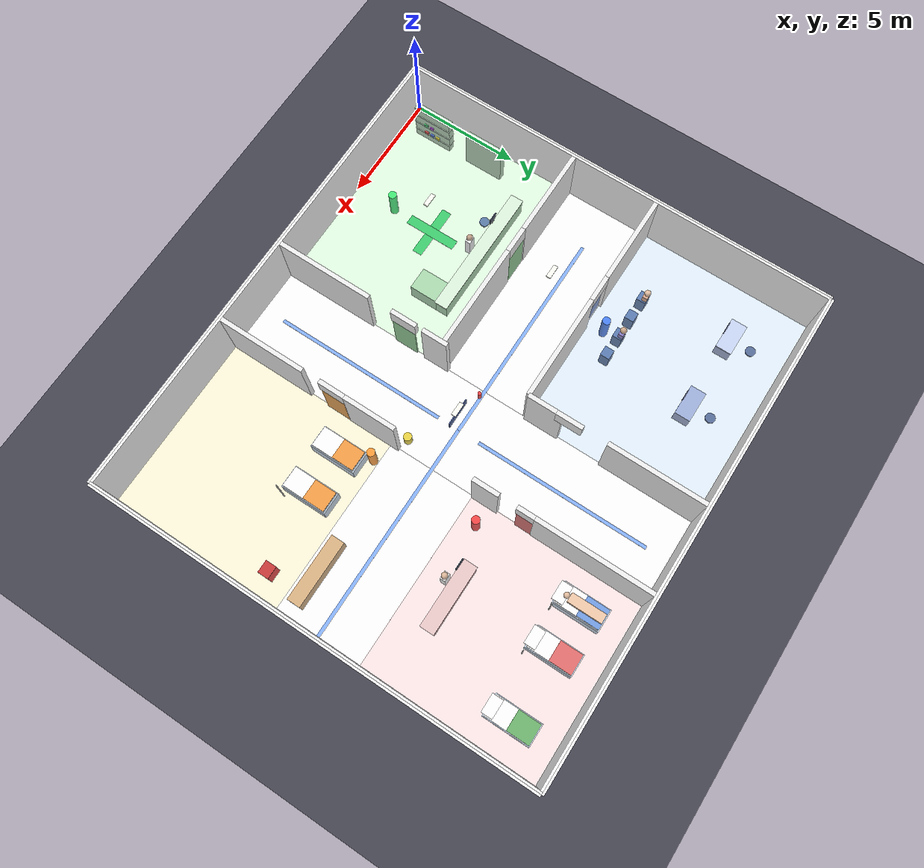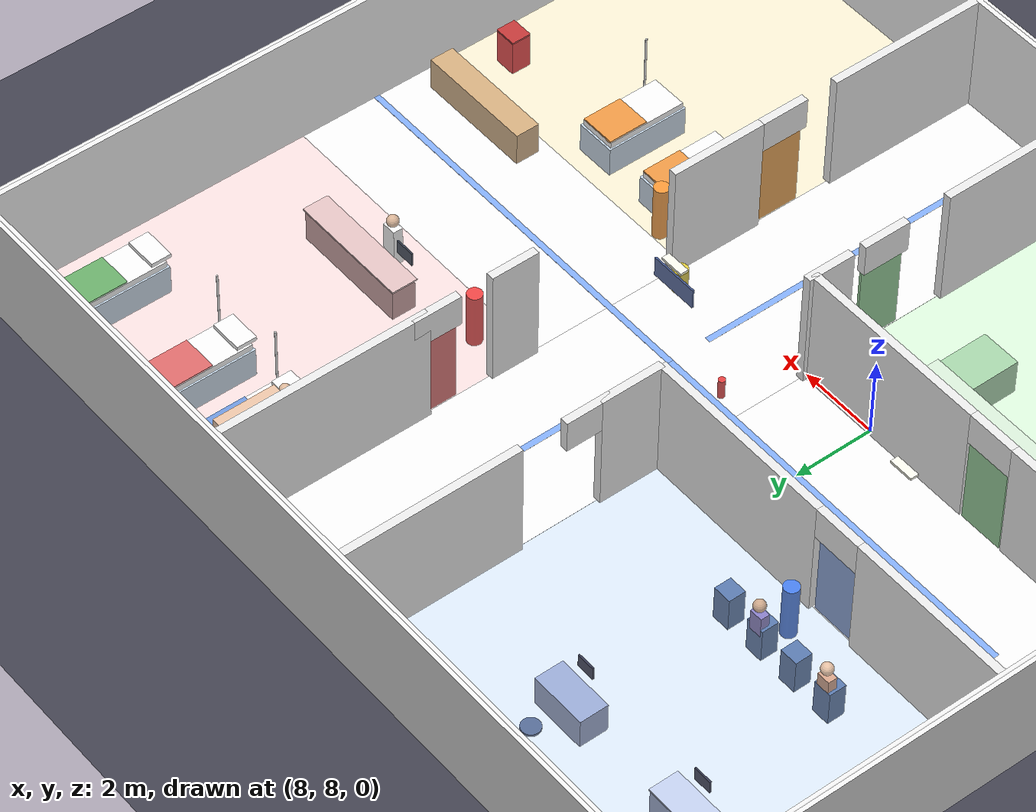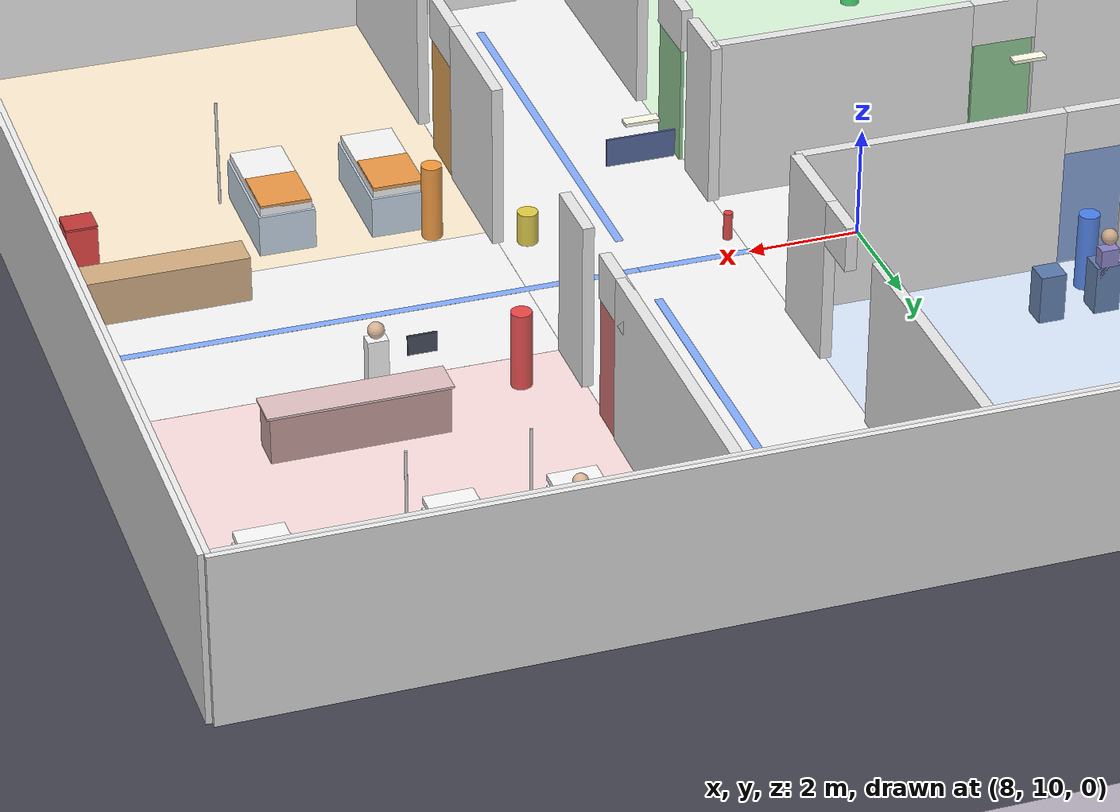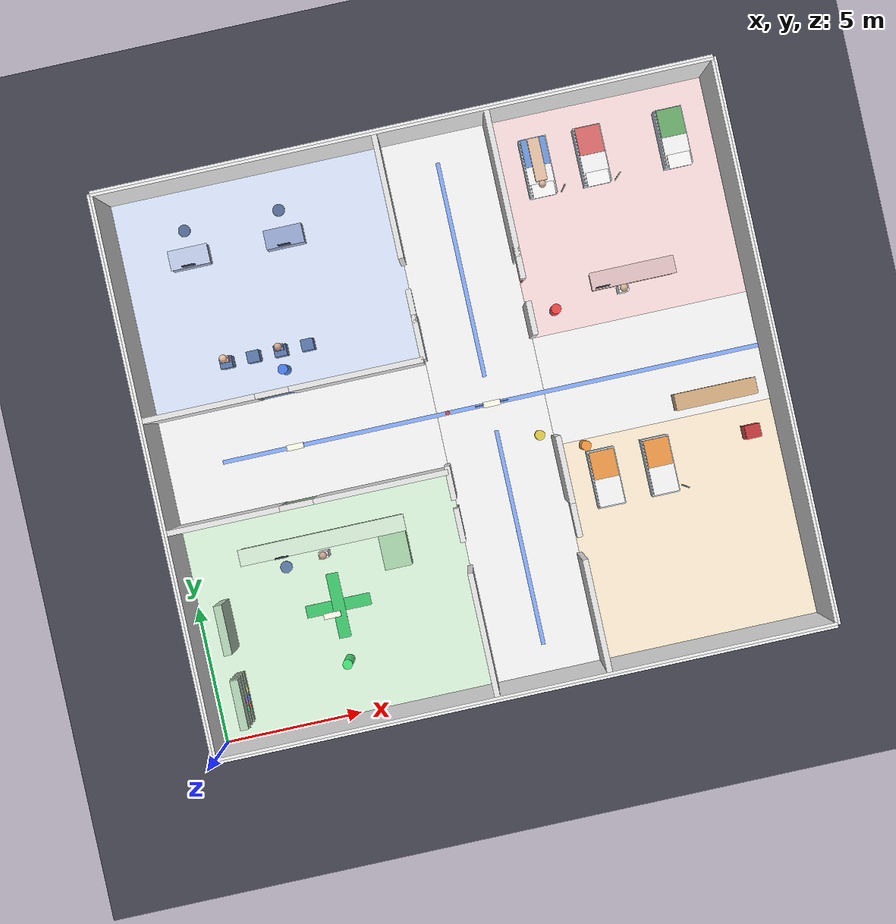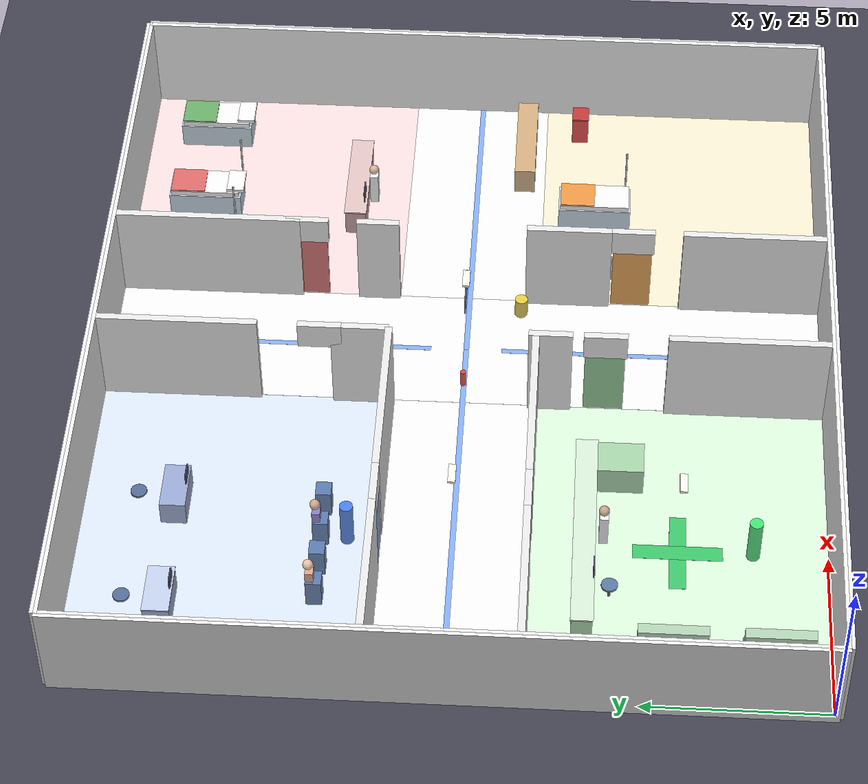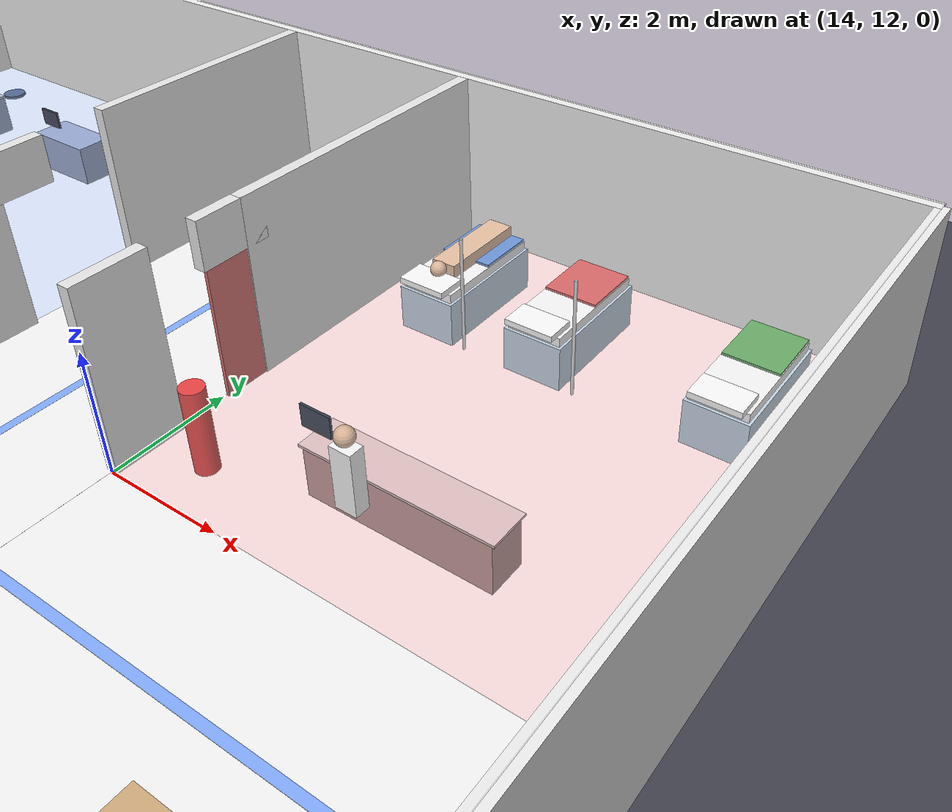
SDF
<?xml version="1.0" ?>
<sdf version="1.9">
<world name="hospital_full">

<gui fullscreen="0">
    <camera name="user_camera">
        <pose>0 -12 6 0 0.5 1.57</pose>
    </camera>
</gui>

  <!-- ═══ PHYSICS ═══ -->
  <physics name="fast_physics" type="ode">
    <max_step_size>0.002</max_step_size>
    <real_time_factor>1.0</real_time_factor>
    <real_time_update_rate>500</real_time_update_rate>
    <ode>
      <solver><type>quick</type><iters>50</iters></solver>
    </ode>
  </physics>

  <plugin filename="gz-sim-physics-system"           name="gz::sim::systems::Physics"/>
  <plugin filename="gz-sim-user-commands-system"     name="gz::sim::systems::UserCommands"/>
  <plugin filename="gz-sim-scene-broadcaster-system" name="gz::sim::systems::SceneBroadcaster"/>
  <plugin filename="gz-sim-sensors-system"           name="gz::sim::systems::Sensors">
    <render_engine>ogre2</render_engine>
  </plugin>
  <plugin filename="gz-sim-contact-system"           name="gz::sim::systems::Contact"/>

  <!-- ═══ LIGHTING ═══ -->

<scene>
    <!-- lumière sombre -->
    <ambient>0.15 0.15 0.20 1</ambient>

    <!-- background sombre -->
    <background>0.10 0.10 0.15 1</background>

    <shadows>true</shadows>
    <grid>false</grid>
</scene>

  <!-- Soleil principal -->
 <light name="sun" type="directional">
    <cast_shadows>true</cast_shadows>

    <pose>0 0 20 0 0 0</pose>

    <!-- lumière moins agressive -->
    <diffuse>0.3 0.3 0.35 1</diffuse>
    <specular>0.05 0.05 0.05 1</specular>

    <attenuation>
        <range>100</range>
        <constant>0.8</constant>
        <linear>0.01</linear>
        <quadratic>0.001</quadratic>
    </attenuation>

    <direction>-0.5 0.1 -0.9</direction>
</light>

  <!-- Lumières plafond — couloir central -->
  <light name="ceil_corr1" type="point">
    <pose>5  10 2.7 0 0 0</pose>
    <diffuse>1.0 0.98 0.94 1</diffuse>
    <attenuation><range>8</range><constant>0.3</constant><linear>0.1</linear></attenuation>
    <cast_shadows>false</cast_shadows>
  </light>
  <light name="ceil_corr2" type="point">
    <pose>12 10 2.7 0 0 0</pose>
    <diffuse>1.0 0.98 0.94 1</diffuse>
    <attenuation><range>8</range><constant>0.3</constant><linear>0.1</linear></attenuation>
    <cast_shadows>false</cast_shadows>
  </light>
  <light name="ceil_corr3" type="point">
    <pose>18 10 2.7 0 0 0</pose>
    <diffuse>1.0 0.98 0.94 1</diffuse>
    <attenuation><range>8</range><constant>0.3</constant><linear>0.1</linear></attenuation>
    <cast_shadows>false</cast_shadows>
  </light>

  <!-- Lumières salles -->
  <light name="ceil_pharm" type="point">
    <pose>5  4  2.8 0 0 0</pose>
    <diffuse>0.9 1.0 0.9 1</diffuse>
    <attenuation><range>10</range><constant>0.2</constant><linear>0.08</linear></attenuation>
    <cast_shadows>false</cast_shadows>
  </light>
  <light name="ceil_consult" type="point">
    <pose>5  16 2.8 0 0 0</pose>
    <diffuse>0.9 0.9 1.0 1</diffuse>
    <attenuation><range>10</range><constant>0.2</constant><linear>0.08</linear></attenuation>
    <cast_shadows>false</cast_shadows>
  </light>
  <light name="ceil_reanim" type="point">
    <pose>18 16 2.8 0 0 0</pose>
    <diffuse>1.0 0.9 0.9 1</diffuse>
    <attenuation><range>10</range><constant>0.2</constant><linear>0.08</linear></attenuation>
    <cast_shadows>false</cast_shadows>
  </light>
  <light name="ceil_emerg" type="point">
    <pose>18 4  2.8 0 0 0</pose>
    <diffuse>1.0 0.95 0.85 1</diffuse>
    <attenuation><range>10</range><constant>0.2</constant><linear>0.08</linear></attenuation>
    <cast_shadows>false</cast_shadows>
  </light>

  <!-- ═══ SOL PRINCIPAL ═══ -->
  <model name="ground_plane">
    <static>true</static>
    <link name="link">
      <collision name="collision">
        <geometry>
          <plane>
            <normal>0 0 1</normal>
            <size>40 30</size>
          </plane>
        </geometry>
      </collision>

      <visual name="visual">
        <geometry>
          <plane>
            <normal>0 0 1</normal>
            <size>40 30</size>
          </plane>
        </geometry>

      <material>
    <ambient>0.25 0.25 0.30 1</ambient>
    <diffuse>0.25 0.25 0.30 1</diffuse>
    <specular>0.05 0.05 0.05 1</specular>
</material>
      </visual>
    </link>
  </model>

  <!-- ═══════════════════════════════════════════════════════
       SOL COLORÉ PAR DÉPARTEMENT
  ═══════════════════════════════════════════════════════ -->

  <!-- Pharmacie — vert clair -->
  <model name="floor_pharmacy"><static>true</static><pose>5 4 0.005 0 0 0</pose>
    <link name="link"><visual name="vis">
      <geometry><box><size>10 8 0.01</size></box></geometry>
      <material><ambient>0.82 0.95 0.82 1</ambient><diffuse>0.82 0.95 0.82 1</diffuse></material>
    </visual></link></model>

  <!-- Consultation — bleu très clair -->
  <model name="floor_consult"><static>true</static><pose>5 16 0.005 0 0 0</pose>
    <link name="link"><visual name="vis">
      <geometry><box><size>10 8 0.01</size></box></geometry>
      <material><ambient>0.82 0.88 0.98 1</ambient><diffuse>0.82 0.88 0.98 1</diffuse></material>
    </visual></link></model>

  <!-- Réanimation — rouge très clair -->
  <model name="floor_reanim"><static>true</static><pose>18 16 0.005 0 0 0</pose>
    <link name="link"><visual name="vis">
      <geometry><box><size>8 8 0.01</size></box></geometry>
      <material><ambient>0.98 0.84 0.84 1</ambient><diffuse>0.98 0.84 0.84 1</diffuse></material>
    </visual></link></model>

  <!-- Urgences — orange très clair -->
  <model name="floor_emerg"><static>true</static><pose>18 4 0.005 0 0 0</pose>
    <link name="link"><visual name="vis">
      <geometry><box><size>8 8 0.01</size></box></geometry>
      <material><ambient>0.99 0.91 0.78 1</ambient><diffuse>0.99 0.91 0.78 1</diffuse></material>
    </visual></link></model>

  <!-- Couloir horizontal -->
  <model name="floor_corr_h"><static>true</static><pose>11 10 0.006 0 0 0</pose>
    <link name="link"><visual name="vis">
      <geometry><box><size>22 4 0.01</size></box></geometry>
      <material><ambient>0.96 0.96 0.96 1</ambient><diffuse>0.96 0.96 0.96 1</diffuse></material>
    </visual></link></model>

  <!-- Couloir vertical -->
  <model name="floor_corr_v"><static>true</static><pose>12 10 0.007 0 0 0</pose>
    <link name="link"><visual name="vis">
      <geometry><box><size>4 20 0.01</size></box></geometry>
      <material><ambient>0.96 0.96 0.96 1</ambient><diffuse>0.96 0.96 0.96 1</diffuse></material>
    </visual></link></model>

  <!-- Lignes au sol couloir (guidage) -->
  <model name="guide_line_1"><static>true</static><pose>12 5 0.012 0 0 0</pose>
    <link name="link"><visual name="vis">
      <geometry><box><size>0.15 8 0.005</size></box></geometry>
      <material><ambient>0.4 0.6 1.0 1</ambient><diffuse>0.4 0.6 1.0 1</diffuse></material>
    </visual></link></model>
  <model name="guide_line_2"><static>true</static><pose>12 15 0.012 0 0 0</pose>
    <link name="link"><visual name="vis">
      <geometry><box><size>0.15 8 0.005</size></box></geometry>
      <material><ambient>0.4 0.6 1.0 1</ambient><diffuse>0.4 0.6 1.0 1</diffuse></material>
    </visual></link></model>
  <model name="guide_line_h"><static>true</static><pose>7 10 0.012 0 0 0</pose>
    <link name="link"><visual name="vis">
      <geometry><box><size>10 0.15 0.005</size></box></geometry>
      <material><ambient>0.4 0.6 1.0 1</ambient><diffuse>0.4 0.6 1.0 1</diffuse></material>
    </visual></link></model>
  <model name="guide_line_h2"><static>true</static><pose>17 10 0.012 0 0 0</pose>
    <link name="link"><visual name="vis">
      <geometry><box><size>10 0.15 0.005</size></box></geometry>
      <material><ambient>0.4 0.6 1.0 1</ambient><diffuse>0.4 0.6 1.0 1</diffuse></material>
    </visual></link></model>

  <!-- ═══════════════════════════════════════════════════════
       MURS EXTÉRIEURS  (h=3.0 m, t=0.20 m)
  ═══════════════════════════════════════════════════════ -->

  <!-- Nord -->
  <model name="wall_N"><static>true</static><pose>11 20.1 1.5 0 0 0</pose>
    <link name="link">
      <collision name="c"><geometry><box><size>22.2 0.2 3.0</size></box></geometry></collision>
      <visual name="v"><geometry><box><size>22.2 0.2 3.0</size></box></geometry>
        <material><ambient>0.92 0.92 0.92 1</ambient><diffuse>0.92 0.92 0.92 1</diffuse>
        <specular>0.1 0.1 0.1 1</specular></material></visual>
    </link></model>

  <!-- Sud -->
  <model name="wall_S"><static>true</static><pose>11 -0.1 1.5 0 0 0</pose>
    <link name="link">
      <collision name="c"><geometry><box><size>22.2 0.2 3.0</size></box></geometry></collision>
      <visual name="v"><geometry><box><size>22.2 0.2 3.0</size></box></geometry>
        <material><ambient>0.92 0.92 0.92 1</ambient><diffuse>0.92 0.92 0.92 1</diffuse></material></visual>
    </link></model>

  <!-- Ouest -->
  <model name="wall_W"><static>true</static><pose>-0.1 10 1.5 0 0 0</pose>
    <link name="link">
      <collision name="c"><geometry><box><size>0.2 20.2 3.0</size></box></geometry></collision>
      <visual name="v"><geometry><box><size>0.2 20.2 3.0</size></box></geometry>
        <material><ambient>0.92 0.92 0.92 1</ambient><diffuse>0.92 0.92 0.92 1</diffuse></material></visual>
    </link></model>

  <!-- Est -->
  <model name="wall_E"><static>true</static><pose>22.1 10 1.5 0 0 0</pose>
    <link name="link">
      <collision name="c"><geometry><box><size>0.2 20.2 3.0</size></box></geometry></collision>
      <visual name="v"><geometry><box><size>0.2 20.2 3.0</size></box></geometry>
        <material><ambient>0.92 0.92 0.92 1</ambient><diffuse>0.92 0.92 0.92 1</diffuse></material></visual>
    </link></model>

  <!-- ═══════════════════════════════════════════════════════
       MURS INTÉRIEURS AVEC OUVERTURES POUR PORTES (1.2 m)
  ═══════════════════════════════════════════════════════ -->

  <!-- Mur entre Pharmacie et couloir horizontal (y=8) -->
  <!-- Ouverture de x=4.0 à x=5.2 -->
  <model name="w_ph_s1"><static>true</static><pose>2 8 1.5 0 0 0</pose>
    <link name="link">
      <collision name="c"><geometry><box><size>4.0 0.2 3.0</size></box></geometry></collision>
      <visual name="v"><geometry><box><size>4.0 0.2 3.0</size></box></geometry>
        <material><ambient>0.88 0.88 0.88 1</ambient><diffuse>0.88 0.88 0.88 1</diffuse></material></visual>
    </link></model>
  <model name="w_ph_s2"><static>true</static><pose>7.6 8 1.5 0 0 0</pose>
    <link name="link">
      <collision name="c"><geometry><box><size>4.8 0.2 3.0</size></box></geometry></collision>
      <visual name="v"><geometry><box><size>4.8 0.2 3.0</size></box></geometry>
        <material><ambient>0.88 0.88 0.88 1</ambient><diffuse>0.88 0.88 0.88 1</diffuse></material></visual>
    </link></model>
  <!-- Linteau porte pharmacie -->
  <model name="w_ph_lintel"><static>true</static><pose>4.6 8 2.6 0 0 0</pose>
    <link name="link">
      <collision name="c"><geometry><box><size>1.2 0.2 0.8</size></box></geometry></collision>
      <visual name="v"><geometry><box><size>1.2 0.2 0.8</size></box></geometry>
        <material><ambient>0.88 0.88 0.88 1</ambient><diffuse>0.88 0.88 0.88 1</diffuse></material></visual>
    </link></model>

  <!-- Mur entre Consultation et couloir (y=12) -->
  <!-- Ouverture de x=4.0 à x=5.2 -->
  <model name="w_co_s1"><static>true</static><pose>2 12 1.5 0 0 0</pose>
    <link name="link">
      <collision name="c"><geometry><box><size>4.0 0.2 3.0</size></box></geometry></collision>
      <visual name="v"><geometry><box><size>4.0 0.2 3.0</size></box></geometry>
        <material><ambient>0.88 0.88 0.88 1</ambient><diffuse>0.88 0.88 0.88 1</diffuse></material></visual>
    </link></model>
  <model name="w_co_s2"><static>true</static><pose>7.6 12 1.5 0 0 0</pose>
    <link name="link">
      <collision name="c"><geometry><box><size>4.8 0.2 3.0</size></box></geometry></collision>
      <visual name="v"><geometry><box><size>4.8 0.2 3.0</size></box></geometry>
        <material><ambient>0.88 0.88 0.88 1</ambient><diffuse>0.88 0.88 0.88 1</diffuse></material></visual>
    </link></model>
  <model name="w_co_lintel"><static>true</static><pose>4.6 12 2.6 0 0 0</pose>
    <link name="link">
      <collision name="c"><geometry><box><size>1.2 0.2 0.8</size></box></geometry></collision>
      <visual name="v"><geometry><box><size>1.2 0.2 0.8</size></box></geometry>
        <material><ambient>0.88 0.88 0.88 1</ambient><diffuse>0.88 0.88 0.88 1</diffuse></material></visual>
    </link></model>

  <!-- Mur entre couloir vertical et Réanimation (x=14, coté N) -->
  <!-- Ouverture y=14.0 à 15.2 -->
  <model name="w_re_w1"><static>true</static><pose>14 17.4 1.5 0 0 0</pose>
    <link name="link">
      <collision name="c"><geometry><box><size>0.2 5.2 3.0</size></box></geometry></collision>
      <visual name="v"><geometry><box><size>0.2 5.2 3.0</size></box></geometry>
        <material><ambient>0.88 0.88 0.88 1</ambient><diffuse>0.88 0.88 0.88 1</diffuse></material></visual>
    </link></model>
  <model name="w_re_w2"><static>true</static><pose>14 12.6 1.5 0 0 0</pose>
    <link name="link">
      <collision name="c"><geometry><box><size>0.2 1.2 3.0</size></box></geometry></collision>
      <visual name="v"><geometry><box><size>0.2 1.2 3.0</size></box></geometry>
        <material><ambient>0.88 0.88 0.88 1</ambient><diffuse>0.88 0.88 0.88 1</diffuse></material></visual>
    </link></model>
  <model name="w_re_lintel"><static>true</static><pose>14 14.6 2.6 0 0 0</pose>
    <link name="link">
      <collision name="c"><geometry><box><size>0.2 1.2 0.8</size></box></geometry></collision>
      <visual name="v"><geometry><box><size>0.2 1.2 0.8</size></box></geometry>
        <material><ambient>0.88 0.88 0.88 1</ambient><diffuse>0.88 0.88 0.88 1</diffuse></material></visual>
    </link></model>

  <!-- Mur entre couloir vertical et Urgences (x=14, coté S) -->
  <!-- Ouverture y=4.8 à 6.0 -->
  <model name="w_em_w1"><static>true</static><pose>14 2 1.5 0 0 0</pose>
    <link name="link">
      <collision name="c"><geometry><box><size>0.2 4.0 3.0</size></box></geometry></collision>
      <visual name="v"><geometry><box><size>0.2 4.0 3.0</size></box></geometry>
        <material><ambient>0.88 0.88 0.88 1</ambient><diffuse>0.88 0.88 0.88 1</diffuse></material></visual>
    </link></model>
  <model name="w_em_w2"><static>true</static><pose>14 7.2 1.5 0 0 0</pose>
    <link name="link">
      <collision name="c"><geometry><box><size>0.2 2.4 3.0</size></box></geometry></collision>
      <visual name="v"><geometry><box><size>0.2 2.4 3.0</size></box></geometry>
        <material><ambient>0.88 0.88 0.88 1</ambient><diffuse>0.88 0.88 0.88 1</diffuse></material></visual>
    </link></model>
  <model name="w_em_lintel"><static>true</static><pose>14 5.4 2.6 0 0 0</pose>
    <link name="link">
      <collision name="c"><geometry><box><size>0.2 1.2 0.8</size></box></geometry></collision>
      <visual name="v"><geometry><box><size>0.2 1.2 0.8</size></box></geometry>
        <material><ambient>0.88 0.88 0.88 1</ambient><diffuse>0.88 0.88 0.88 1</diffuse></material></visual>
    </link></model>

  <!-- Mur entre Pharmacie et couloir vertical (x=10) -->
  <!-- Ouverture y=5.5 à 6.7 -->
  <model name="w_ph_e1"><static>true</static><pose>10 2.2 1.5 0 0 0</pose>
    <link name="link">
      <collision name="c"><geometry><box><size>0.2 4.4 3.0</size></box></geometry></collision>
      <visual name="v"><geometry><box><size>0.2 4.4 3.0</size></box></geometry>
        <material><ambient>0.88 0.88 0.88 1</ambient><diffuse>0.88 0.88 0.88 1</diffuse></material></visual>
    </link></model>
  <model name="w_ph_e2"><static>true</static><pose>10 7.6 1.5 0 0 0</pose>
    <link name="link">
      <collision name="c"><geometry><box><size>0.2 1.2 3.0</size></box></geometry></collision>
      <visual name="v"><geometry><box><size>0.2 1.2 3.0</size></box></geometry>
        <material><ambient>0.88 0.88 0.88 1</ambient><diffuse>0.88 0.88 0.88 1</diffuse></material></visual>
    </link></model>
  <model name="w_ph_e_lintel"><static>true</static><pose>10 6.1 2.6 0 0 0</pose>
    <link name="link">
      <collision name="c"><geometry><box><size>0.2 1.2 0.8</size></box></geometry></collision>
      <visual name="v"><geometry><box><size>0.2 1.2 0.8</size></box></geometry>
        <material><ambient>0.88 0.88 0.88 1</ambient><diffuse>0.88 0.88 0.88 1</diffuse></material></visual>
    </link></model>

  <!-- Mur entre Consultation et couloir vertical (x=10, nord) -->
  <model name="w_co_e1"><static>true</static><pose>10 12.8 1.5 0 0 0</pose>
    <link name="link">
      <collision name="c"><geometry><box><size>0.2 1.6 3.0</size></box></geometry></collision>
      <visual name="v"><geometry><box><size>0.2 1.6 3.0</size></box></geometry>
        <material><ambient>0.88 0.88 0.88 1</ambient><diffuse>0.88 0.88 0.88 1</diffuse></material></visual>
    </link></model>
  <model name="w_co_e2"><static>true</static><pose>10 17.8 1.5 0 0 0</pose>
    <link name="link">
      <collision name="c"><geometry><box><size>0.2 4.4 3.0</size></box></geometry></collision>
      <visual name="v"><geometry><box><size>0.2 4.4 3.0</size></box></geometry>
        <material><ambient>0.88 0.88 0.88 1</ambient><diffuse>0.88 0.88 0.88 1</diffuse></material></visual>
    </link></model>
  <model name="w_co_e_lintel"><static>true</static><pose>10 13.9 2.6 0 0 0</pose>
    <link name="link">
      <collision name="c"><geometry><box><size>0.2 1.2 0.8</size></box></geometry></collision>
      <visual name="v"><geometry><box><size>0.2 1.2 0.8</size></box></geometry>
        <material><ambient>0.88 0.88 0.88 1</ambient><diffuse>0.88 0.88 0.88 1</diffuse></material></visual>
    </link></model>

  <!-- ═══════════════════════════════════════════════════════
       PORTES (panneaux de porte colorés)
  ═══════════════════════════════════════════════════════ -->

  <!-- Porte Pharmacie (y=8, x=4.6) -->
  <model name="door_pharmacy"><static>true</static><pose>4.6 8.05 1.1 0 0 0</pose>
    <link name="link">
      <collision name="c"><geometry><box><size>1.1 0.06 2.2</size></box></geometry></collision>
      <visual name="v"><geometry><box><size>1.1 0.06 2.2</size></box></geometry>
        <material><ambient>0.42 0.72 0.44 1</ambient><diffuse>0.42 0.72 0.44 1</diffuse>
        <specular>0.3 0.5 0.3 1</specular></material></visual>
    </link></model>
  <!-- Vitre porte pharmacie -->
  <model name="door_pharmacy_glass"><static>true</static><pose>4.6 8.03 1.6 0 0 0</pose>
    <link name="link"><visual name="v">
      <geometry><box><size>0.6 0.04 0.9</size></box></geometry>
      <material><ambient>0.7 0.9 0.9 0.5</ambient><diffuse>0.7 0.9 0.9 0.5</diffuse></material>
    </visual></link></model>

  <!-- Porte Consultation (y=12, x=4.6) -->
  <model name="door_consult"><static>true</static><pose>4.6 11.95 1.1 0 0 0</pose>
    <link name="link">
      <collision name="c"><geometry><box><size>1.1 0.06 2.2</size></box></geometry></collision>
      <visual name="v"><geometry><box><size>1.1 0.06 2.2</size></box></geometry>
        <material><ambient>0.38 0.52 0.80 1</ambient><diffuse>0.38 0.52 0.80 1</diffuse></material></visual>
    </link></model>

  <!-- Porte Réanimation (x=14, y=14.6) -->
  <model name="door_reanim"><static>true</static><pose>14.05 14.6 1.1 0 0 0</pose>
    <link name="link">
      <collision name="c"><geometry><box><size>0.06 1.1 2.2</size></box></geometry></collision>
      <visual name="v"><geometry><box><size>0.06 1.1 2.2</size></box></geometry>
        <material><ambient>0.80 0.26 0.26 1</ambient><diffuse>0.80 0.26 0.26 1</diffuse></material></visual>
    </link></model>

  <!-- Porte Urgences (x=14, y=5.4) -->
  <model name="door_emerg"><static>true</static><pose>14.05 5.4 1.1 0 0 0</pose>
    <link name="link">
      <collision name="c"><geometry><box><size>0.06 1.1 2.2</size></box></geometry></collision>
      <visual name="v"><geometry><box><size>0.06 1.1 2.2</size></box></geometry>
        <material><ambient>0.88 0.52 0.10 1</ambient><diffuse>0.88 0.52 0.10 1</diffuse></material></visual>
    </link></model>

  <!-- Porte entre Pharmacie et couloir vertical -->
  <model name="door_ph_side"><static>true</static><pose>10.05 6.1 1.1 0 0 0</pose>
    <link name="link">
      <collision name="c"><geometry><box><size>0.06 1.1 2.2</size></box></geometry></collision>
      <visual name="v"><geometry><box><size>0.06 1.1 2.2</size></box></geometry>
        <material><ambient>0.42 0.72 0.44 1</ambient><diffuse>0.42 0.72 0.44 1</diffuse></material></visual>
    </link></model>

  <!-- ═══════════════════════════════════════════════════════
       PLAFOND (semi-transparent)
  ═══════════════════════════════════════════════════════ -->
  <model name="ceiling"><static>true</static><pose>11 10 3.0 0 0 0</pose>
    <link name="link"><visual name="v">
      <geometry><box><size>22.2 20.2 0.06</size></box></geometry>
      <material><ambient>0.95 0.95 0.95 0.15</ambient><diffuse>0.95 0.95 0.95 0.15</diffuse></material>
    </visual></link></model>

  <!-- Luminaires plafond (géométrie visible) -->
  <model name="lamp_corr1"><static>true</static><pose>5 10 2.92 0 0 0</pose>
    <link name="link"><visual name="v">
      <geometry><box><size>0.6 0.2 0.06</size></box></geometry>
      <material><ambient>1 1 0.9 1</ambient><diffuse>1 1 0.9 1</diffuse>
      <emissive>0.8 0.8 0.6 1</emissive></material>
    </visual></link></model>
  <model name="lamp_corr2"><static>true</static><pose>12 10 2.92 0 0 0</pose>
    <link name="link"><visual name="v">
      <geometry><box><size>0.6 0.2 0.06</size></box></geometry>
      <material><ambient>1 1 0.9 1</ambient><diffuse>1 1 0.9 1</diffuse>
      <emissive>0.8 0.8 0.6 1</emissive></material>
    </visual></link></model>
  <model name="lamp_pharm"><static>true</static><pose>5 4 2.92 0 0 0</pose>
    <link name="link"><visual name="v">
      <geometry><box><size>0.6 0.2 0.06</size></box></geometry>
      <material><ambient>1 1 0.9 1</ambient><diffuse>1 1 0.9 1</diffuse>
      <emissive>0.8 0.8 0.6 1</emissive></material>
    </visual></link></model>

  <!-- ═══════════════════════════════════════════════════════
       PHARMACIE — MOBILIER
  ═══════════════════════════════════════════════════════ -->

  <!-- Comptoir d'accueil (L-shape simulé avec 2 boîtes) -->
  <model name="pharma_counter_main"><static>true</static><pose>5 6.5 0.45 0 0 0</pose>
    <link name="link">
      <collision name="c"><geometry><box><size>6.0 0.55 0.9</size></box></geometry></collision>
      <visual name="v"><geometry><box><size>6.0 0.55 0.9</size></box></geometry>
        <material><ambient>0.56 0.78 0.58 1</ambient><diffuse>0.56 0.78 0.58 1</diffuse>
        <specular>0.3 0.4 0.3 1</specular></material></visual>
    </link></model>
  <!-- Plateau comptoir -->
  <model name="pharma_counter_top"><static>true</static><pose>5 6.5 0.91 0 0 0</pose>
    <link name="link">
      <collision name="c"><geometry><box><size>6.1 0.6 0.04</size></box></geometry></collision>
      <visual name="v"><geometry><box><size>6.1 0.6 0.04</size></box></geometry>
        <material><ambient>0.8 0.9 0.8 1</ambient><diffuse>0.8 0.9 0.8 1</diffuse>
        <specular>0.5 0.6 0.5 1</specular></material></visual>
    </link></model>
  <!-- Retour comptoir -->
  <model name="pharma_counter_return"><static>true</static><pose>7.5 5.7 0.45 0 0 0</pose>
    <link name="link">
      <collision name="c"><geometry><box><size>1.0 1.5 0.9</size></box></geometry></collision>
      <visual name="v"><geometry><box><size>1.0 1.5 0.9</size></box></geometry>
        <material><ambient>0.56 0.78 0.58 1</ambient><diffuse>0.56 0.78 0.58 1</diffuse></material></visual>
    </link></model>

  <!-- Étagères médicaments (3 colonnes × 2 rangées) -->
  <!-- Colonne 1 -->
  <model name="shelf1_back"><static>true</static><pose>1.0 1.5 1.0 0 0 0</pose>
    <link name="link">
      <collision name="c"><geometry><box><size>0.3 1.8 2.0</size></box></geometry></collision>
      <visual name="v"><geometry><box><size>0.3 1.8 2.0</size></box></geometry>
        <material><ambient>0.62 0.78 0.64 1</ambient><diffuse>0.62 0.78 0.64 1</diffuse></material></visual>
    </link></model>
  <!-- Planches étagère 1 -->
  <model name="shelf1_p1"><static>true</static><pose>1.0 1.5 0.45 0 0 0</pose>
    <link name="link"><visual name="v">
      <geometry><box><size>0.35 1.85 0.03</size></box></geometry>
      <material><ambient>0.78 0.88 0.78 1</ambient><diffuse>0.78 0.88 0.78 1</diffuse></material>
    </visual></link></model>
  <model name="shelf1_p2"><static>true</static><pose>1.0 1.5 1.0 0 0 0</pose>
    <link name="link"><visual name="v">
      <geometry><box><size>0.35 1.85 0.03</size></box></geometry>
      <material><ambient>0.78 0.88 0.78 1</ambient><diffuse>0.78 0.88 0.78 1</diffuse></material>
    </visual></link></model>
  <model name="shelf1_p3"><static>true</static><pose>1.0 1.5 1.55 0 0 0</pose>
    <link name="link"><visual name="v">
      <geometry><box><size>0.35 1.85 0.03</size></box></geometry>
      <material><ambient>0.78 0.88 0.78 1</ambient><diffuse>0.78 0.88 0.78 1</diffuse></material>
    </visual></link></model>

  <!-- Colonne 2 -->
  <model name="shelf2_back"><static>true</static><pose>1.0 4.2 1.0 0 0 0</pose>
    <link name="link">
      <collision name="c"><geometry><box><size>0.3 1.8 2.0</size></box></geometry></collision>
      <visual name="v"><geometry><box><size>0.3 1.8 2.0</size></box></geometry>
        <material><ambient>0.62 0.78 0.64 1</ambient><diffuse>0.62 0.78 0.64 1</diffuse></material></visual>
    </link></model>

  <!-- Boîtes médicaments colorées sur étagères -->
  <model name="med_box_r1"><static>true</static><pose>1.15 1.2 0.55 0 0 0</pose>
    <link name="link"><visual name="v">
      <geometry><box><size>0.12 0.18 0.15</size></box></geometry>
      <material><ambient>0.9 0.2 0.2 1</ambient><diffuse>0.9 0.2 0.2 1</diffuse></material>
    </visual></link></model>
  <model name="med_box_b1"><static>true</static><pose>1.15 1.5 0.55 0 0 0</pose>
    <link name="link"><visual name="v">
      <geometry><box><size>0.12 0.18 0.15</size></box></geometry>
      <material><ambient>0.2 0.4 0.9 1</ambient><diffuse>0.2 0.4 0.9 1</diffuse></material>
    </visual></link></model>
  <model name="med_box_y1"><static>true</static><pose>1.15 1.8 0.55 0 0 0</pose>
    <link name="link"><visual name="v">
      <geometry><box><size>0.12 0.18 0.15</size></box></geometry>
      <material><ambient>0.9 0.85 0.1 1</ambient><diffuse>0.9 0.85 0.1 1</diffuse></material>
    </visual></link></model>
  <model name="med_box_g1"><static>true</static><pose>1.15 1.2 1.1 0 0 0</pose>
    <link name="link"><visual name="v">
      <geometry><box><size>0.12 0.18 0.15</size></box></geometry>
      <material><ambient>0.2 0.8 0.4 1</ambient><diffuse>0.2 0.8 0.4 1</diffuse></material>
    </visual></link></model>
  <model name="med_box_p1"><static>true</static><pose>1.15 1.5 1.1 0 0 0</pose>
    <link name="link"><visual name="v">
      <geometry><box><size>0.12 0.18 0.15</size></box></geometry>
      <material><ambient>0.7 0.2 0.9 1</ambient><diffuse>0.7 0.2 0.9 1</diffuse></material>
    </visual></link></model>

  <!-- Croix verte pharmacie au sol -->
  <model name="cross_h"><static>true</static><pose>5 4 0.012 0 0 0</pose>
    <link name="link"><visual name="v">
      <geometry><box><size>2.4 0.45 0.005</size></box></geometry>
      <material><ambient>0.06 0.72 0.28 1</ambient><diffuse>0.06 0.72 0.28 1</diffuse></material>
    </visual></link></model>
  <model name="cross_v"><static>true</static><pose>5 4 0.013 0 0 0</pose>
    <link name="link"><visual name="v">
      <geometry><box><size>0.45 2.4 0.005</size></box></geometry>
      <material><ambient>0.06 0.72 0.28 1</ambient><diffuse>0.06 0.72 0.28 1</diffuse></material>
    </visual></link></model>

  <!-- Ordinateur comptoir -->
  <model name="computer_pharm"><static>true</static><pose>3.5 6.22 1.2 0 0 0</pose>
    <link name="link">
      <collision name="c"><geometry><box><size>0.45 0.04 0.35</size></box></geometry></collision>
      <visual name="v"><geometry><box><size>0.45 0.04 0.35</size></box></geometry>
        <material><ambient>0.08 0.12 0.22 1</ambient><diffuse>0.08 0.12 0.22 1</diffuse>
        <emissive>0.04 0.08 0.20 1</emissive></material></visual>
    </link></model>
  <model name="computer_pharm_base"><static>true</static><pose>3.5 6.22 0.95 0 0 0</pose>
    <link name="link"><visual name="v">
      <geometry><box><size>0.15 0.05 0.05</size></box></geometry>
      <material><ambient>0.3 0.3 0.3 1</ambient><diffuse>0.3 0.3 0.3 1</diffuse></material>
    </visual></link></model>

  <!-- Chaise pharmacien -->
  <model name="chair_pharm"><static>true</static><pose>3.5 5.8 0.44 0 0 0</pose>
    <link name="link">
      <collision name="c"><geometry><cylinder><radius>0.22</radius><length>0.06</length></cylinder></geometry></collision>
      <visual name="v"><geometry><cylinder><radius>0.22</radius><length>0.06</length></cylinder></geometry>
        <material><ambient>0.2 0.35 0.55 1</ambient><diffuse>0.2 0.35 0.55 1</diffuse></material></visual>
    </link></model>
  <model name="chair_pharm_leg"><static>true</static><pose>3.5 5.8 0.22 0 0 0</pose>
    <link name="link"><visual name="v">
      <geometry><cylinder><radius>0.04</radius><length>0.45</length></cylinder></geometry>
      <material><ambient>0.15 0.15 0.15 1</ambient><diffuse>0.15 0.15 0.15 1</diffuse></material>
    </visual></link></model>

  <!-- Beacon pharmacie (vert) -->
  <model name="beacon_pharmacy"><static>true</static><pose>5 2 0.7 0 0 0</pose>
    <link name="link">
      <collision name="c"><geometry><cylinder><radius>0.18</radius><length>1.4</length></cylinder></geometry></collision>
      <visual name="v"><geometry><cylinder><radius>0.18</radius><length>1.4</length></cylinder></geometry>
        <material><ambient>0.08 0.86 0.32 1</ambient><diffuse>0.08 0.86 0.32 1</diffuse>
        <emissive>0.04 0.4 0.16 1</emissive></material></visual>
    </link></model>

  <!-- ═══════════════════════════════════════════════════════
       RÉANIMATION — LITS MÉDICAUX
  ═══════════════════════════════════════════════════════ -->

  <!-- Lit 1 -->
  <model name="bed_r1_frame"><static>true</static><pose>15.5 18 0.38 0 0 0</pose>
    <link name="link">
      <collision name="c"><geometry><box><size>1.0 2.1 0.76</size></box></geometry></collision>
      <visual name="v"><geometry><box><size>1.0 2.1 0.76</size></box></geometry>
        <material><ambient>0.72 0.80 0.88 1</ambient><diffuse>0.72 0.80 0.88 1</diffuse>
        <specular>0.4 0.4 0.5 1</specular></material></visual>
    </link></model>
  <model name="bed_r1_mattress"><static>true</static><pose>15.5 18 0.82 0 0 0</pose>
    <link name="link"><visual name="v">
      <geometry><box><size>0.92 2.0 0.18</size></box></geometry>
      <material><ambient>0.96 0.96 0.96 1</ambient><diffuse>0.96 0.96 0.96 1</diffuse></material>
    </visual></link></model>
  <model name="bed_r1_pillow"><static>true</static><pose>15.5 17.1 0.96 0 0 0</pose>
    <link name="link"><visual name="v">
      <geometry><box><size>0.82 0.5 0.1</size></box></geometry>
      <material><ambient>0.98 0.98 0.98 1</ambient><diffuse>0.98 0.98 0.98 1</diffuse></material>
    </visual></link></model>
  <!-- Couverture lit 1 -->
  <model name="bed_r1_blanket"><static>true</static><pose>15.5 18.5 0.92 0 0 0</pose>
    <link name="link"><visual name="v">
      <geometry><box><size>0.90 1.0 0.06</size></box></geometry>
      <material><ambient>0.30 0.50 0.82 1</ambient><diffuse>0.30 0.50 0.82 1</diffuse></material>
    </visual></link></model>
  <!-- Pied à sérum lit 1 -->
  <model name="iv_pole_r1"><static>true</static><pose>16.2 17.0 1.0 0 0 0</pose>
    <link name="link">
      <collision name="c"><geometry><cylinder><radius>0.025</radius><length>2.0</length></cylinder></geometry></collision>
      <visual name="v"><geometry><cylinder><radius>0.025</radius><length>2.0</length></cylinder></geometry>
        <material><ambient>0.8 0.8 0.8 1</ambient><diffuse>0.8 0.8 0.8 1</diffuse>
        <specular>0.8 0.8 0.8 1</specular></material></visual>
    </link></model>
  <!-- Poche sérum -->
  <model name="iv_bag_r1"><static>true</static><pose>16.2 17.0 2.1 0 0 0</pose>
    <link name="link"><visual name="v">
      <geometry><box><size>0.12 0.06 0.22</size></box></geometry>
      <material><ambient>0.8 0.9 1.0 0.7</ambient><diffuse>0.8 0.9 1.0 0.7</diffuse></material>
    </visual></link></model>

  <!-- Lit 2 -->
  <model name="bed_r2_frame"><static>true</static><pose>17.5 18 0.38 0 0 0</pose>
    <link name="link">
      <collision name="c"><geometry><box><size>1.0 2.1 0.76</size></box></geometry></collision>
      <visual name="v"><geometry><box><size>1.0 2.1 0.76</size></box></geometry>
        <material><ambient>0.72 0.80 0.88 1</ambient><diffuse>0.72 0.80 0.88 1</diffuse>
        <specular>0.4 0.4 0.5 1</specular></material></visual>
    </link></model>
  <model name="bed_r2_mattress"><static>true</static><pose>17.5 18 0.82 0 0 0</pose>
    <link name="link"><visual name="v">
      <geometry><box><size>0.92 2.0 0.18</size></box></geometry>
      <material><ambient>0.96 0.96 0.96 1</ambient><diffuse>0.96 0.96 0.96 1</diffuse></material>
    </visual></link></model>
  <model name="bed_r2_pillow"><static>true</static><pose>17.5 17.1 0.96 0 0 0</pose>
    <link name="link"><visual name="v">
      <geometry><box><size>0.82 0.5 0.1</size></box></geometry>
      <material><ambient>0.98 0.98 0.98 1</ambient><diffuse>0.98 0.98 0.98 1</diffuse></material>
    </visual></link></model>
  <model name="bed_r2_blanket"><static>true</static><pose>17.5 18.5 0.92 0 0 0</pose>
    <link name="link"><visual name="v">
      <geometry><box><size>0.90 1.0 0.06</size></box></geometry>
      <material><ambient>0.82 0.28 0.28 1</ambient><diffuse>0.82 0.28 0.28 1</diffuse></material>
    </visual></link></model>
  <model name="iv_pole_r2"><static>true</static><pose>18.2 17.0 1.0 0 0 0</pose>
    <link name="link">
      <collision name="c"><geometry><cylinder><radius>0.025</radius><length>2.0</length></cylinder></geometry></collision>
      <visual name="v"><geometry><cylinder><radius>0.025</radius><length>2.0</length></cylinder></geometry>
        <material><ambient>0.8 0.8 0.8 1</ambient><diffuse>0.8 0.8 0.8 1</diffuse></material></visual>
    </link></model>

  <!-- Lit 3 -->
  <model name="bed_r3_frame"><static>true</static><pose>20.5 18 0.38 0 0 0</pose>
    <link name="link">
      <collision name="c"><geometry><box><size>1.0 2.1 0.76</size></box></geometry></collision>
      <visual name="v"><geometry><box><size>1.0 2.1 0.76</size></box></geometry>
        <material><ambient>0.72 0.80 0.88 1</ambient><diffuse>0.72 0.80 0.88 1</diffuse></material></visual>
    </link></model>
  <model name="bed_r3_mattress"><static>true</static><pose>20.5 18 0.82 0 0 0</pose>
    <link name="link"><visual name="v">
      <geometry><box><size>0.92 2.0 0.18</size></box></geometry>
      <material><ambient>0.96 0.96 0.96 1</ambient><diffuse>0.96 0.96 0.96 1</diffuse></material>
    </visual></link></model>
  <model name="bed_r3_pillow"><static>true</static><pose>20.5 17.1 0.96 0 0 0</pose>
    <link name="link"><visual name="v">
      <geometry><box><size>0.82 0.5 0.1</size></box></geometry>
      <material><ambient>0.98 0.98 0.98 1</ambient><diffuse>0.98 0.98 0.98 1</diffuse></material>
    </visual></link></model>
  <model name="bed_r3_blanket"><static>true</static><pose>20.5 18.5 0.92 0 0 0</pose>
    <link name="link"><visual name="v">
      <geometry><box><size>0.90 1.0 0.06</size></box></geometry>
      <material><ambient>0.28 0.60 0.28 1</ambient><diffuse>0.28 0.60 0.28 1</diffuse></material>
    </visual></link></model>

  <!-- Poste infirmier réanimation -->
  <model name="nurse_desk_r"><static>true</static><pose>18 13.5 0.42 0 0 0</pose>
    <link name="link">
      <collision name="c"><geometry><box><size>3.0 0.6 0.84</size></box></geometry></collision>
      <visual name="v"><geometry><box><size>3.0 0.6 0.84</size></box></geometry>
        <material><ambient>0.72 0.50 0.50 1</ambient><diffuse>0.72 0.50 0.50 1</diffuse></material></visual>
    </link></model>
  <model name="nurse_desk_r_top"><static>true</static><pose>18 13.5 0.86 0 0 0</pose>
    <link name="link"><visual name="v">
      <geometry><box><size>3.1 0.65 0.04</size></box></geometry>
      <material><ambient>0.85 0.7 0.7 1</ambient><diffuse>0.85 0.7 0.7 1</diffuse>
      <specular>0.4 0.3 0.3 1</specular></material>
    </visual></link></model>

  <!-- Écran monitoring réanimation -->
  <model name="monitor_r1"><static>true</static><pose>16.8 13.22 1.4 0 0 0</pose>
    <link name="link">
      <collision name="c"><geometry><box><size>0.5 0.04 0.35</size></box></geometry></collision>
      <visual name="v"><geometry><box><size>0.5 0.04 0.35</size></box></geometry>
        <material><ambient>0.04 0.08 0.16 1</ambient><diffuse>0.04 0.08 0.16 1</diffuse>
        <emissive>0.02 0.08 0.20 1</emissive></material></visual>
    </link></model>

  <!-- Beacon réanimation (rouge) -->
  <model name="beacon_reanim"><static>true</static><pose>15 12.8 0.7 0 0 0</pose>
    <link name="link">
      <collision name="c"><geometry><cylinder><radius>0.18</radius><length>1.4</length></cylinder></geometry></collision>
      <visual name="v"><geometry><cylinder><radius>0.18</radius><length>1.4</length></cylinder></geometry>
        <material><ambient>0.90 0.10 0.10 1</ambient><diffuse>0.90 0.10 0.10 1</diffuse>
        <emissive>0.5 0.05 0.05 1</emissive></material></visual>
    </link></model>

  <!-- ═══════════════════════════════════════════════════════
       URGENCES — MOBILIER
  ═══════════════════════════════════════════════════════ -->

  <!-- Lit urgences 1 -->
  <model name="bed_e1_frame"><static>true</static><pose>15.5 6.5 0.38 0 0 0</pose>
    <link name="link">
      <collision name="c"><geometry><box><size>1.0 2.1 0.76</size></box></geometry></collision>
      <visual name="v"><geometry><box><size>1.0 2.1 0.76</size></box></geometry>
        <material><ambient>0.72 0.80 0.88 1</ambient><diffuse>0.72 0.80 0.88 1</diffuse></material></visual>
    </link></model>
  <model name="bed_e1_mattress"><static>true</static><pose>15.5 6.5 0.82 0 0 0</pose>
    <link name="link"><visual name="v">
      <geometry><box><size>0.92 2.0 0.18</size></box></geometry>
      <material><ambient>0.96 0.96 0.96 1</ambient><diffuse>0.96 0.96 0.96 1</diffuse></material>
    </visual></link></model>
  <model name="bed_e1_blanket"><static>true</static><pose>15.5 7.0 0.92 0 0 0</pose>
    <link name="link"><visual name="v">
      <geometry><box><size>0.90 1.0 0.06</size></box></geometry>
      <material><ambient>0.90 0.50 0.10 1</ambient><diffuse>0.90 0.50 0.10 1</diffuse></material>
    </visual></link></model>

  <!-- Lit urgences 2 -->
  <model name="bed_e2_frame"><static>true</static><pose>17.5 6.5 0.38 0 0 0</pose>
    <link name="link">
      <collision name="c"><geometry><box><size>1.0 2.1 0.76</size></box></geometry></collision>
      <visual name="v"><geometry><box><size>1.0 2.1 0.76</size></box></geometry>
        <material><ambient>0.72 0.80 0.88 1</ambient><diffuse>0.72 0.80 0.88 1</diffuse></material></visual>
    </link></model>
  <model name="bed_e2_mattress"><static>true</static><pose>17.5 6.5 0.82 0 0 0</pose>
    <link name="link"><visual name="v">
      <geometry><box><size>0.92 2.0 0.18</size></box></geometry>
      <material><ambient>0.96 0.96 0.96 1</ambient><diffuse>0.96 0.96 0.96 1</diffuse></material>
    </visual></link></model>
  <model name="bed_e2_blanket"><static>true</static><pose>17.5 7.0 0.92 0 0 0</pose>
    <link name="link"><visual name="v">
      <geometry><box><size>0.90 1.0 0.06</size></box></geometry>
      <material><ambient>0.90 0.50 0.10 1</ambient><diffuse>0.90 0.50 0.10 1</diffuse></material>
    </visual></link></model>
  <model name="iv_pole_e2"><static>true</static><pose>18.2 5.6 1.0 0 0 0</pose>
    <link name="link">
      <collision name="c"><geometry><cylinder><radius>0.025</radius><length>2.0</length></cylinder></geometry></collision>
      <visual name="v"><geometry><cylinder><radius>0.025</radius><length>2.0</length></cylinder></geometry>
        <material><ambient>0.8 0.8 0.8 1</ambient><diffuse>0.8 0.8 0.8 1</diffuse></material></visual>
    </link></model>

  <!-- Chariot crash urgences (rouge vif) -->
  <model name="crash_cart"><static>true</static><pose>21 7 0.45 0 0 0</pose>
    <link name="link">
      <collision name="c"><geometry><box><size>0.55 0.48 0.9</size></box></geometry></collision>
      <visual name="v"><geometry><box><size>0.55 0.48 0.9</size></box></geometry>
        <material><ambient>0.9 0.05 0.05 1</ambient><diffuse>0.9 0.05 0.05 1</diffuse>
        <specular>0.5 0.1 0.1 1</specular></material></visual>
    </link></model>
  <model name="crash_cart_top"><static>true</static><pose>21 7 0.92 0 0 0</pose>
    <link name="link"><visual name="v">
      <geometry><box><size>0.56 0.49 0.04</size></box></geometry>
      <material><ambient>0.7 0.04 0.04 1</ambient><diffuse>0.7 0.04 0.04 1</diffuse></material>
    </visual></link></model>

  <!-- Poste infirmier urgences -->
  <model name="nurse_desk_e"><static>true</static><pose>20 8.6 0.42 0 0 0</pose>
    <link name="link">
      <collision name="c"><geometry><box><size>3.0 0.6 0.84</size></box></geometry></collision>
      <visual name="v"><geometry><box><size>3.0 0.6 0.84</size></box></geometry>
        <material><ambient>0.78 0.60 0.38 1</ambient><diffuse>0.78 0.60 0.38 1</diffuse></material></visual>
    </link></model>

  <!-- Beacon urgences (orange) -->
  <model name="beacon_emerg"><static>true</static><pose>15 7.8 0.7 0 0 0</pose>
    <link name="link">
      <collision name="c"><geometry><cylinder><radius>0.18</radius><length>1.4</length></cylinder></geometry></collision>
      <visual name="v"><geometry><cylinder><radius>0.18</radius><length>1.4</length></cylinder></geometry>
        <material><ambient>0.95 0.50 0.04 1</ambient><diffuse>0.95 0.50 0.04 1</diffuse>
        <emissive>0.5 0.25 0.02 1</emissive></material></visual>
    </link></model>

  <!-- ═══════════════════════════════════════════════════════
       CONSULTATION — MOBILIER
  ═══════════════════════════════════════════════════════ -->

  <!-- Bureau médecin 1 -->
  <model name="doc_desk1"><static>true</static><pose>2.5 17.5 0.38 0 0 0</pose>
    <link name="link">
      <collision name="c"><geometry><box><size>1.4 0.7 0.76</size></box></geometry></collision>
      <visual name="v"><geometry><box><size>1.4 0.7 0.76</size></box></geometry>
        <material><ambient>0.50 0.58 0.78 1</ambient><diffuse>0.50 0.58 0.78 1</diffuse></material></visual>
    </link></model>
  <model name="doc_desk1_top"><static>true</static><pose>2.5 17.5 0.78 0 0 0</pose>
    <link name="link"><visual name="v">
      <geometry><box><size>1.45 0.72 0.04</size></box></geometry>
      <material><ambient>0.70 0.76 0.90 1</ambient><diffuse>0.70 0.76 0.90 1</diffuse>
      <specular>0.4 0.4 0.5 1</specular></material>
    </visual></link></model>
  <!-- Écran bureau 1 -->
  <model name="screen_c1"><static>true</static><pose>2.5 17.15 1.25 0 0 0</pose>
    <link name="link">
      <collision name="c"><geometry><box><size>0.45 0.04 0.32</size></box></geometry></collision>
      <visual name="v"><geometry><box><size>0.45 0.04 0.32</size></box></geometry>
        <material><ambient>0.04 0.06 0.18 1</ambient><diffuse>0.04 0.06 0.18 1</diffuse>
        <emissive>0.02 0.06 0.18 1</emissive></material></visual>
    </link></model>
  <!-- Chaise bureau 1 -->
  <model name="chair_c1"><static>true</static><pose>2.5 18.5 0.44 0 0 0</pose>
    <link name="link">
      <collision name="c"><geometry><cylinder><radius>0.22</radius><length>0.06</length></cylinder></geometry></collision>
      <visual name="v"><geometry><cylinder><radius>0.22</radius><length>0.06</length></cylinder></geometry>
        <material><ambient>0.18 0.28 0.48 1</ambient><diffuse>0.18 0.28 0.48 1</diffuse></material></visual>
    </link></model>

  <!-- Bureau médecin 2 -->
  <model name="doc_desk2"><static>true</static><pose>6.0 17.5 0.38 0 0 0</pose>
    <link name="link">
      <collision name="c"><geometry><box><size>1.4 0.7 0.76</size></box></geometry></collision>
      <visual name="v"><geometry><box><size>1.4 0.7 0.76</size></box></geometry>
        <material><ambient>0.50 0.58 0.78 1</ambient><diffuse>0.50 0.58 0.78 1</diffuse></material></visual>
    </link></model>
  <model name="screen_c2"><static>true</static><pose>6.0 17.15 1.25 0 0 0</pose>
    <link name="link">
      <collision name="c"><geometry><box><size>0.45 0.04 0.32</size></box></geometry></collision>
      <visual name="v"><geometry><box><size>0.45 0.04 0.32</size></box></geometry>
        <material><ambient>0.04 0.06 0.18 1</ambient><diffuse>0.04 0.06 0.18 1</diffuse>
        <emissive>0.02 0.06 0.18 1</emissive></material></visual>
    </link></model>
  <model name="chair_c2"><static>true</static><pose>6.0 18.5 0.44 0 0 0</pose>
    <link name="link">
      <collision name="c"><geometry><cylinder><radius>0.22</radius><length>0.06</length></cylinder></geometry></collision>
      <visual name="v"><geometry><cylinder><radius>0.22</radius><length>0.06</length></cylinder></geometry>
        <material><ambient>0.18 0.28 0.48 1</ambient><diffuse>0.18 0.28 0.48 1</diffuse></material></visual>
    </link></model>

  <!-- Chaises salle d'attente (couloir N) -->
  <model name="wait_chair1"><static>true</static><pose>3 13.5 0.44 0 0 0</pose>
    <link name="link">
      <collision name="c"><geometry><box><size>0.45 0.42 0.88</size></box></geometry></collision>
      <visual name="v"><geometry><box><size>0.45 0.42 0.88</size></box></geometry>
        <material><ambient>0.20 0.35 0.60 1</ambient><diffuse>0.20 0.35 0.60 1</diffuse></material></visual>
    </link></model>
  <model name="wait_chair2"><static>true</static><pose>4 13.5 0.44 0 0 0</pose>
    <link name="link">
      <collision name="c"><geometry><box><size>0.45 0.42 0.88</size></box></geometry></collision>
      <visual name="v"><geometry><box><size>0.45 0.42 0.88</size></box></geometry>
        <material><ambient>0.20 0.35 0.60 1</ambient><diffuse>0.20 0.35 0.60 1</diffuse></material></visual>
    </link></model>
  <model name="wait_chair3"><static>true</static><pose>5 13.5 0.44 0 0 0</pose>
    <link name="link">
      <collision name="c"><geometry><box><size>0.45 0.42 0.88</size></box></geometry></collision>
      <visual name="v"><geometry><box><size>0.45 0.42 0.88</size></box></geometry>
        <material><ambient>0.20 0.35 0.60 1</ambient><diffuse>0.20 0.35 0.60 1</diffuse></material></visual>
    </link></model>
  <model name="wait_chair4"><static>true</static><pose>6 13.5 0.44 0 0 0</pose>
    <link name="link">
      <collision name="c"><geometry><box><size>0.45 0.42 0.88</size></box></geometry></collision>
      <visual name="v"><geometry><box><size>0.45 0.42 0.88</size></box></geometry>
        <material><ambient>0.20 0.35 0.60 1</ambient><diffuse>0.20 0.35 0.60 1</diffuse></material></visual>
    </link></model>

  <!-- Beacon consultation (bleu) -->
  <model name="beacon_consult"><static>true</static><pose>5 12.8 0.7 0 0 0</pose>
    <link name="link">
      <collision name="c"><geometry><cylinder><radius>0.18</radius><length>1.4</length></cylinder></geometry></collision>
      <visual name="v"><geometry><cylinder><radius>0.18</radius><length>1.4</length></cylinder></geometry>
        <material><ambient>0.12 0.38 0.90 1</ambient><diffuse>0.12 0.38 0.90 1</diffuse>
        <emissive>0.06 0.20 0.5 1</emissive></material></visual>
    </link></model>

  <!-- ═══════════════════════════════════════════════════════
       PATIENTS (silhouettes humaines simplifiées)
  ═══════════════════════════════════════════════════════ -->

  <!-- Patient assis salle d'attente 1 -->
  <model name="patient1_body"><static>true</static><pose>3 13.6 0.94 0 0 0</pose>
    <link name="link">
      <collision name="c"><geometry><box><size>0.32 0.22 0.52</size></box></geometry></collision>
      <visual name="v"><geometry><box><size>0.32 0.22 0.52</size></box></geometry>
        <material><ambient>0.80 0.56 0.44 1</ambient><diffuse>0.80 0.56 0.44 1</diffuse></material></visual>
    </link></model>
  <model name="patient1_head"><static>true</static><pose>3 13.62 1.42 0 0 0</pose>
    <link name="link">
      <collision name="c"><geometry><sphere><radius>0.14</radius></sphere></geometry></collision>
      <visual name="v"><geometry><sphere><radius>0.14</radius></sphere></geometry>
        <material><ambient>0.88 0.70 0.56 1</ambient><diffuse>0.88 0.70 0.56 1</diffuse></material></visual>
    </link></model>

  <!-- Patient assis 2 -->
  <model name="patient2_body"><static>true</static><pose>5 13.6 0.94 0 0 0</pose>
    <link name="link">
      <collision name="c"><geometry><box><size>0.32 0.22 0.52</size></box></geometry></collision>
      <visual name="v"><geometry><box><size>0.32 0.22 0.52</size></box></geometry>
        <material><ambient>0.42 0.38 0.72 1</ambient><diffuse>0.42 0.38 0.72 1</diffuse></material></visual>
    </link></model>
  <model name="patient2_head"><static>true</static><pose>5 13.62 1.42 0 0 0</pose>
    <link name="link">
      <collision name="c"><geometry><sphere><radius>0.14</radius></sphere></geometry></collision>
      <visual name="v"><geometry><sphere><radius>0.14</radius></sphere></geometry>
        <material><ambient>0.76 0.58 0.44 1</ambient><diffuse>0.76 0.58 0.44 1</diffuse></material></visual>
    </link></model>

  <!-- Infirmière au poste réanimation -->
  <model name="nurse1_body"><static>true</static><pose>17.5 13.0 1.0 0 0 0</pose>
    <link name="link">
      <collision name="c"><geometry><box><size>0.35 0.24 1.0</size></box></geometry></collision>
      <visual name="v"><geometry><box><size>0.35 0.24 1.0</size></box></geometry>
        <material><ambient>0.96 0.96 0.96 1</ambient><diffuse>0.96 0.96 0.96 1</diffuse></material></visual>
    </link></model>
  <model name="nurse1_head"><static>true</static><pose>17.5 13.0 1.65 0 0 0</pose>
    <link name="link">
      <collision name="c"><geometry><sphere><radius>0.14</radius></sphere></geometry></collision>
      <visual name="v"><geometry><sphere><radius>0.14</radius></sphere></geometry>
        <material><ambient>0.82 0.64 0.50 1</ambient><diffuse>0.82 0.64 0.50 1</diffuse></material></visual>
    </link></model>

  <!-- Médecin pharmacie -->
  <model name="pharmacist_body"><static>true</static><pose>5 6.0 1.0 0 0 0</pose>
    <link name="link">
      <collision name="c"><geometry><box><size>0.35 0.24 1.0</size></box></geometry></collision>
      <visual name="v"><geometry><box><size>0.35 0.24 1.0</size></box></geometry>
        <material><ambient>0.92 0.92 0.94 1</ambient><diffuse>0.92 0.92 0.94 1</diffuse></material></visual>
    </link></model>
  <model name="pharmacist_head"><static>true</static><pose>5 6.0 1.65 0 0 0</pose>
    <link name="link">
      <collision name="c"><geometry><sphere><radius>0.14</radius></sphere></geometry></collision>
      <visual name="v"><geometry><sphere><radius>0.14</radius></sphere></geometry>
        <material><ambient>0.72 0.56 0.44 1</ambient><diffuse>0.72 0.56 0.44 1</diffuse></material></visual>
    </link></model>

  <!-- Patient allongé réanimation (sur lit 1) -->
  <model name="patient_lying_body"><static>true</static><pose>15.5 18.2 1.02 0 0 0</pose>
    <link name="link">
      <collision name="c"><geometry><box><size>0.42 1.55 0.22</size></box></geometry></collision>
      <visual name="v"><geometry><box><size>0.42 1.55 0.22</size></box></geometry>
        <material><ambient>0.88 0.70 0.56 1</ambient><diffuse>0.88 0.70 0.56 1</diffuse></material></visual>
    </link></model>
  <model name="patient_lying_head"><static>true</static><pose>15.5 17.3 1.08 0 0 0</pose>
    <link name="link">
      <collision name="c"><geometry><sphere><radius>0.13</radius></sphere></geometry></collision>
      <visual name="v"><geometry><sphere><radius>0.13</radius></sphere></geometry>
        <material><ambient>0.84 0.66 0.52 1</ambient><diffuse>0.84 0.66 0.52 1</diffuse></material></visual>
    </link></model>

  <!-- ═══════════════════════════════════════════════════════
       COULOIR — PANNEAU DIRECTIONNEL
  ═══════════════════════════════════════════════════════ -->

  <!-- Panneau signalisation couloir -->
  <model name="sign_board"><static>true</static><pose>12 10 2.4 0 0 1.5708</pose>
    <link name="link">
      <collision name="c"><geometry><box><size>0.04 1.2 0.5</size></box></geometry></collision>
      <visual name="v"><geometry><box><size>0.04 1.2 0.5</size></box></geometry>
        <material><ambient>0.12 0.22 0.50 1</ambient><diffuse>0.12 0.22 0.50 1</diffuse></material></visual>
    </link></model>

  <!-- Extincteur couloir -->
  <model name="fire_ext"><static>true</static><pose>10.4 10 0.6 0 0 0</pose>
    <link name="link">
      <collision name="c"><geometry><cylinder><radius>0.08</radius><length>0.5</length></cylinder></geometry></collision>
      <visual name="v"><geometry><cylinder><radius>0.08</radius><length>0.5</length></cylinder></geometry>
        <material><ambient>0.85 0.08 0.08 1</ambient><diffuse>0.85 0.08 0.08 1</diffuse></material></visual>
    </link></model>

  <!-- Poubelle médicale couloir -->
  <model name="medical_bin"><static>true</static><pose>13.5 8.5 0.3 0 0 0</pose>
    <link name="link">
      <collision name="c"><geometry><cylinder><radius>0.18</radius><length>0.6</length></cylinder></geometry></collision>
      <visual name="v"><geometry><cylinder><radius>0.18</radius><length>0.6</length></cylinder></geometry>
        <material><ambient>0.85 0.75 0.08 1</ambient><diffuse>0.85 0.75 0.08 1</diffuse></material></visual>
    </link></model>

</world>
</sdf>
